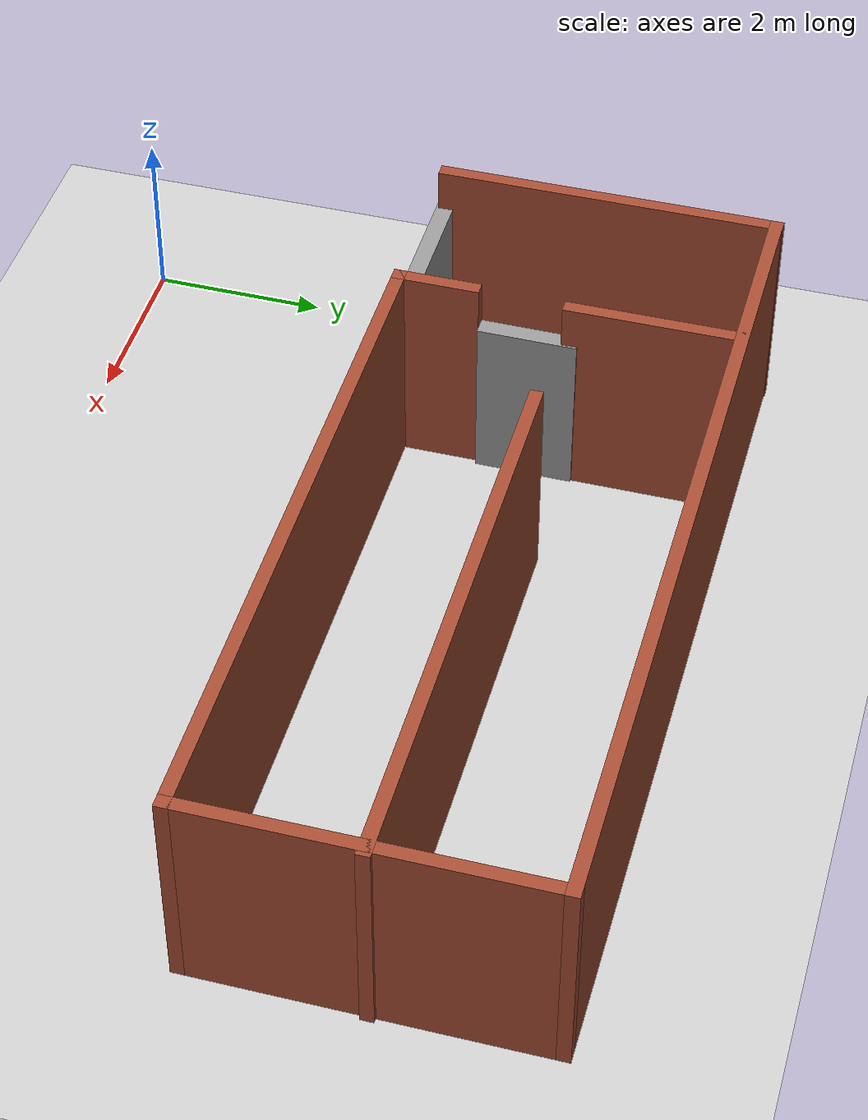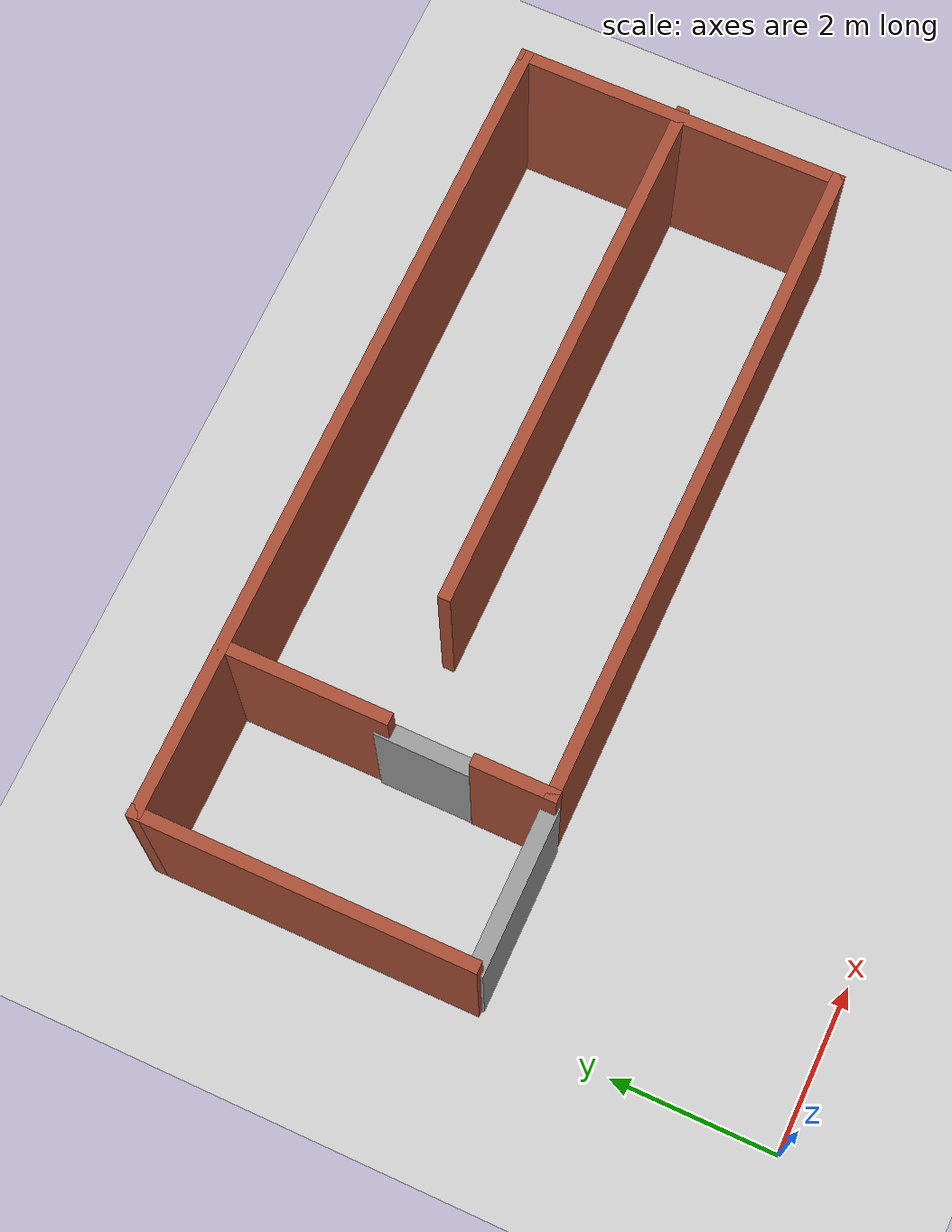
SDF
<sdf version="1.7">
 <world name="default">
  <light name="sun" type="directional">
   <pose>0 0 10 0 -0 0</pose>
   <diffuse>0.8 0.8 0.8 1</diffuse>
   <specular>0.2 0.2 0.2 1</specular>
   <attenuation>
    <range>1000</range>
    <constant>0.9</constant>
    <linear>0.01</linear>
    <quadratic>0.001</quadratic>
   </attenuation>
   <direction>-0.5 0.1 -0.9</direction>
   <spot><inner_angle>0</inner_angle><outer_angle>0</outer_angle><falloff>0</falloff></spot>
  </light>
  <model name="ground_plane">
   <static>1</static>
   <link name="link">
    <collision name="collision">
     <geometry><plane><normal>0 0 1</normal><size>100 100</size></plane></geometry>
     <surface>
      <contact><collide_bitmask>65535</collide_bitmask></contact>
      <friction><ode><mu>100</mu><mu2>50</mu2></ode></friction>
     </surface>
    </collision>
    <visual name="visual">
     <cast_shadows>0</cast_shadows>
     <geometry><plane><normal>0 0 1</normal><size>100 100</size></plane></geometry>
     <material>
      <script><uri>file://media/materials/scripts/gazebo.material</uri><name>Gazebo/Grey</name></script>
     </material>
    </visual>
   </link>
  </model>
  <gravity>0 0 -9.8</gravity>
  <magnetic_field>6e-06 2.3e-05 -4.2e-05</magnetic_field>
  <atmosphere type="adiabatic"/>
  <physics type="ode">
   <max_step_size>0.001</max_step_size>
   <real_time_factor>1</real_time_factor>
   <real_time_update_rate>1000</real_time_update_rate>
  </physics>
  <scene><ambient>0.4 0.4 0.4 1</ambient><background>0.7 0.7 0.7 1</background><shadows>1</shadows></scene>
  <audio><device>default</device></audio>
  <spherical_coordinates>
   <surface_model>EARTH_WGS84</surface_model>
   <latitude_deg>0</latitude_deg>
   <longitude_deg>0</longitude_deg>
   <elevation>0</elevation>
   <heading_deg>0</heading_deg>
  </spherical_coordinates>
  <model name="main.world">
   <pose>5.02725 5.92008 0 0 -0 0</pose>
   <link name="Door_0">
    <collision name="Door_0_Collision">
     <geometry><box><size>1.12961 0.2 2</size></box></geometry>
     <pose>0 0 1 0 -0 0</pose>
    </collision>
    <visual name="Door_0_Visual">
     <pose>0 0 1 0 -0 0</pose>
     <geometry><box><size>1.12961 0.2 2</size></box></geometry>
     <material>
      <script><uri>file://media/materials/scripts/gazebo.material</uri><name>Gazebo/Grey</name></script>
     </material>
    </visual>
    <pose>-2.93486 -0.77816 0 0 0 -1.5774</pose>
   </link>
   <link name="Door_1">
    <collision name="Door_1_Collision">
     <geometry><box><size>1.97826 0.2 2</size></box></geometry>
     <pose>0 0 1 0 -0 0</pose>
    </collision>
    <visual name="Door_1_Visual">
     <pose>0 0 1 0 -0 0</pose>
     <geometry><box><size>1.97826 0.2 2</size></box></geometry>
     <material>
      <script><uri>file://media/materials/scripts/gazebo.material</uri><name>Gazebo/Grey</name></script>
     </material>
    </visual>
    <pose>-3.94044 -2.26733 0 0 -0 0</pose>
   </link>
   <link name="Wall_1">
    <collision name="Wall_1_Collision">
     <geometry><box><size>4 0.15 2.5</size></box></geometry>
     <pose>0 0 1.25 0 -0 0</pose>
    </collision>
    <visual name="Wall_1_Visual">
     <pose>0 0 1.25 0 -0 0</pose>
     <geometry><box><size>4 0.15 2.5</size></box></geometry>
     <material>
      <script><uri>file://media/materials/scripts/gazebo.material</uri><name>Gazebo/Bricks</name></script>
      <ambient>1 1 1 1</ambient>
     </material>
     <meta><layer>0</layer></meta>
    </visual>
    <pose>-4.92922 -0.337974 0 0 -0 1.5708</pose>
   </link>
   <link name="Wall_10">
    <collision name="Wall_10_Collision">
     <geometry><box><size>6.5 0.15 2.5</size></box></geometry>
     <pose>0 0 1.25 0 -0 0</pose>
    </collision>
    <visual name="Wall_10_Visual">
     <pose>0 0 1.25 0 -0 0</pose>
     <geometry><box><size>6.5 0.15 2.5</size></box></geometry>
     <material>
      <script><uri>file://media/materials/scripts/gazebo.material</uri><name>Gazebo/Bricks</name></script>
      <ambient>1 1 1 1</ambient>
     </material>
     <meta><layer>0</layer></meta>
    </visual>
    <pose>1.75427 -0.3425 0 0 -0 0</pose>
   </link>
   <link name="Wall_3">
    <collision name="Wall_3_Collision">
     <geometry><box><size>9.95859 0.15 2.5</size></box></geometry>
     <pose>0 0 1.25 0 -0 0</pose>
    </collision>
    <visual name="Wall_3_Visual">
     <pose>0 0 1.25 0 -0 0</pose>
     <geometry><box><size>9.95859 0.15 2.5</size></box></geometry>
     <material>
      <script><uri>file://media/materials/scripts/gazebo.material</uri><name>Gazebo/Bricks</name></script>
      <ambient>1 1 1 1</ambient>
     </material>
     <meta><layer>0</layer></meta>
    </visual>
    <pose>-0.024972 1.57791 0 0 -0 -8.5e-05</pose>
   </link>
   <link name="Wall_4">
    <collision name="Wall_4_Collision">
     <geometry><box><size>4 0.15 2.5</size></box></geometry>
     <pose>0 0 1.25 0 -0 0</pose>
    </collision>
    <visual name="Wall_4_Visual">
     <pose>0 0 1.25 0 -0 0</pose>
     <geometry><box><size>4 0.15 2.5</size></box></geometry>
     <material>
      <script><uri>file://media/materials/scripts/gazebo.material</uri><name>Gazebo/Bricks</name></script>
      <ambient>1 1 1 1</ambient>
     </material>
     <meta><layer>0</layer></meta>
    </visual>
    <pose>4.87927 -0.3475 0 0 -0 -1.5708</pose>
   </link>
   <link name="Wall_5">
    <collision name="Wall_5_Collision">
     <geometry><box><size>8 0.15 2.5</size></box></geometry>
     <pose>0 0 1.25 0 -0 0</pose>
    </collision>
    <visual name="Wall_5_Visual">
     <pose>0 0 1.25 0 -0 0</pose>
     <geometry><box><size>8 0.15 2.5</size></box></geometry>
     <material>
      <script><uri>file://media/materials/scripts/gazebo.material</uri><name>Gazebo/Bricks</name></script>
      <ambient>1 1 1 1</ambient>
     </material>
     <meta><layer>0</layer></meta>
    </visual>
    <pose>0.954273 -2.2725 0 0 -0 3.14159</pose>
   </link>
   <link name="Wall_6">
    <collision name="Wall_6_Collision">
     <geometry><box><size>1 0.15 2.5</size></box></geometry>
     <pose>0 0 1.25 0 -0 0</pose>
    </collision>
    <visual name="Wall_6_Visual">
     <pose>0 0 1.25 0 -0 0</pose>
     <geometry><box><size>1 0.15 2.5</size></box></geometry>
     <material>
      <script><uri>file://media/materials/scripts/gazebo.material</uri><name>Gazebo/Bricks</name></script>
      <ambient>1 1 1 1</ambient>
     </material>
     <meta><layer>0</layer></meta>
    </visual>
    <pose>-2.97073 -1.8475 0 0 -0 1.5708</pose>
   </link>
   <link name="Wall_8">
    <collision name="Wall_8_Collision">
     <geometry><box><size>2 0.15 2.5</size></box></geometry>
     <pose>0 0 1.25 0 -0 0</pose>
    </collision>
    <visual name="Wall_8_Visual">
     <pose>0 0 1.25 0 -0 0</pose>
     <geometry><box><size>2 0.15 2.5</size></box></geometry>
     <material>
      <script><uri>file://media/materials/scripts/gazebo.material</uri><name>Gazebo/Bricks</name></script>
      <ambient>1 1 1 1</ambient>
     </material>
     <meta><layer>0</layer></meta>
    </visual>
    <pose>-2.93073 0.6025 0 0 -0 1.5708</pose>
   </link>
   <static>1</static>
  </model>
 </world>
</sdf>
